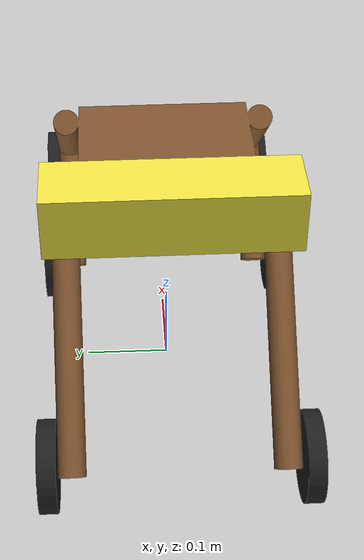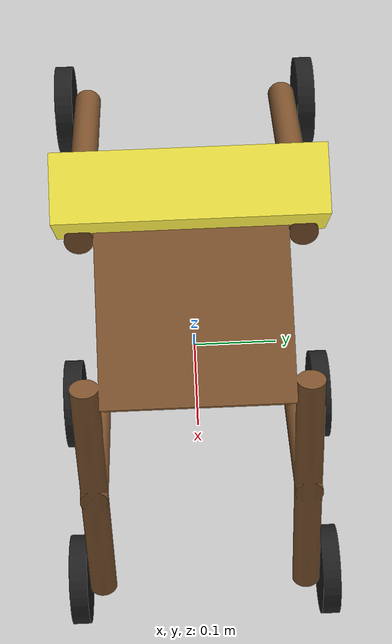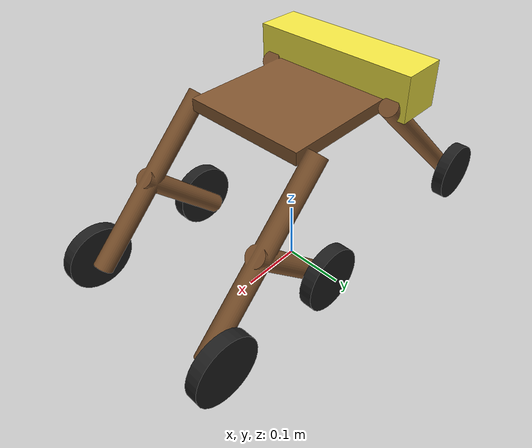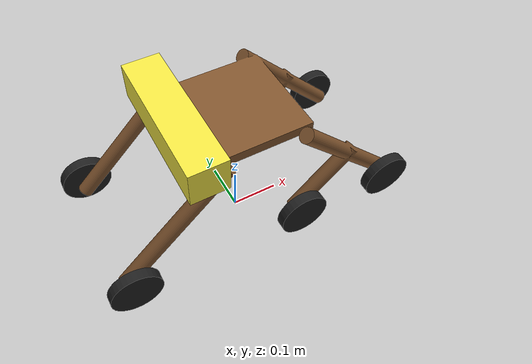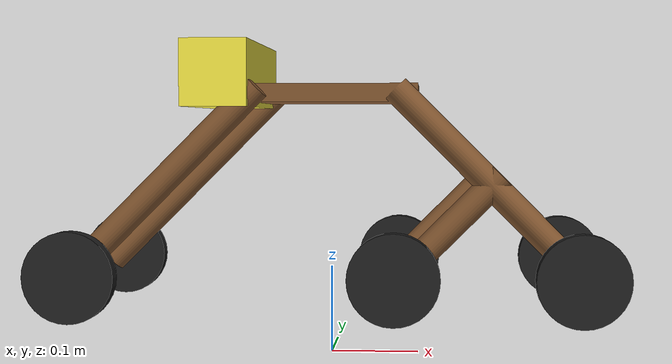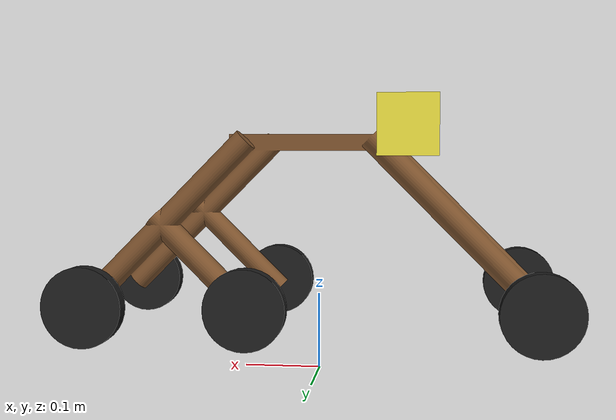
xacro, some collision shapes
<?xml version="1.0"?>
<robot name="drobo" xmlns:xacro="http://ros.org/wiki/xacro">

<xacro:include filename="$(find drobo_description)/urdf/materials.xacro" />
<xacro:include filename="$(find drobo_description)/urdf/drobo_library.urdf.xacro" />
<xacro:include filename="$(find drobo_description)/urdf/drobo_base_gazebo.urdf.xacro" />
<xacro:include filename="$(find drobo_description)/urdf/drobo_gazebo.urdf.xacro" />

    <xacro:property name="width" value="1" />
    <xacro:property name="height" value="0.2" />
    <xacro:property name="depth" value="1" />

<xacro:property name="pipe_length1" value="0.65"/>
<xacro:property name="pipe_length" value="0.5"/>
<xacro:property name="pipe_radius" value="0.05"/>
<xacro:property name="back_pipe_length" value="0.95"/>

<xacro:property name="wheel_length1" value="0.1"/>
<xacro:property name="wheel_radius1" value="0.25"/>
<xacro:property name="wheel_length" value="0.050"/>
<xacro:property name="wheel_radius" value="0.05"/>

<xacro:property name="M_PI" value="3.1415926535897931" />

  <xacro:macro name="cylinder_inertia" params="m r h">
            <mass value="${m}" />
            <origin  xyz="0 0 0" rpy="0 1.57 1.57" />
            <inertia  ixx="${m*(3*r*r+h*h)/12}" ixy = "0" ixz = "0"
                      iyy="${m*(3*r*r+h*h)/12}" iyz = "0"
                      izz="${m*r*r/2}" />
  </xacro:macro>

<xacro:macro name="box_inertia" params="m w h d">
          <mass value="${m}" />
          <inertia
            ixx="${m / 12.0 * (d*d + h*h)}" ixy="0.0" ixz="0.0"
            iyy="${m / 12.0 * (w*w + h*h)}" iyz="0.0"
            izz="${m / 12.0 * (w*w + d*d)}"/>
  </xacro:macro>

//base link-----------------------------------------------
    <link name="base_footprint">
            <visual>
                <geometry>
                   <box size="0.001 0.001 0.001"/>
                </geometry>
                 <origin  xyz="0 0 0" rpy="0 0 0" />
            </visual>
        </link>

    <joint name="base_joint" type="fixed">
      <origin xyz="0 0 ${wheel_radius}" rpy="0 0 0" />
      <parent link="base_footprint"/>
      <child link="base_link" />
    </joint>

<link name="base_link">
          <origin xyz="0 0 0" rpy="0 0 0" />
            <visual>
                <geometry>
                   <mesh filename="package://drobo_description/meshes/body.dae"/>
                </geometry>
                 <origin  xyz="0 0 0" rpy="0 0 0" />
                 <material name="brown"/>
            </visual>
           <collision>
               <geometry>
                  <mesh filename="package://drobo_description/meshes/body.dae"/>>
               </geometry>
                <origin  xyz="0 0 0" rpy="0 0 0" />
           </collision>
<inertial>
           <xacro:box_inertia m="5" w="${width}" h="${height}" d="${depth}" />
</inertial>
       </link>

  <link name="front_left_wheel1">
            <visual>
                <geometry>
                   <mesh filename="package://drobo_description/meshes/wheel.dae"/>
                </geometry>
                 <origin  xyz="0 0 0" rpy="0 0 0" />
                <material name="black"/>
            </visual>
           <collision>
               <geometry>
                  <mesh filename="package://drobo_description/meshes/wheel.dae"/>>
               </geometry>
                <origin  xyz="0 0 0" rpy="0 0 0" />
           </collision>
<inertial>
           <xacro:cylinder_inertia m="0.5" r="${wheel_radius}" h="${wheel_length}"/>
</inertial>
       </link>

       <joint name="base_to_front_left_wheel1" type="continuous">
           <parent link="base_link"/>
           <child link="front_left_wheel1"/>
           <limit effort="100" velocity="100"/>
           <joint_properties damping="0.0" friction="0.0"/>
           <dynamics damping="50" friction="1"/>
           <axis xyz="0 1 0"/>
           <origin rpy="0 0 0" xyz="0.275 -0.14 ${wheel_radius}"/>
       </joint>

<transmission name="front_left_tran1">
    <type>transmission_interface/SimpleTransmission</type>
    <joint name="base_to_front_left_wheel1">
        <hardwareInterface>hardware_interface/EffortJointInterface</hardwareInterface>
    </joint>
    <actuator name="front_left_motor1">
        <hardwareInterface>hardware_interface/EffortJointInterface</hardwareInterface>
        <mechanicalReduction>1</mechanicalReduction>
        <motorTorqueConstant>1</motorTorqueConstant>
    </actuator>
</transmission>

<link name="front_left_wheel2">
            <visual>
                <geometry>
                   <mesh filename="package://drobo_description/meshes/wheel.dae"/>
                </geometry>
                 <origin  xyz="0 0 0" rpy="0 0 0" />
                 <material name="black"/>
            </visual>
           <collision>
               <geometry>
                  <mesh filename="package://drobo_description/meshes/wheel.dae"/>>
               </geometry>
                <origin  xyz="0 0 0" rpy="0 0 0" />
           </collision>
<inertial>
           <xacro:cylinder_inertia m="0.5" r="${wheel_radius}" h="${wheel_length}"/>
</inertial>
       </link>

       <joint name="base_to_front_left_wheel2" type="continuous">
           <parent link="base_link"/>
           <child link="front_left_wheel2"/>
           <limit effort="100" velocity="100"/>
           <joint_properties damping="0.0" friction="0.0"/>
           <dynamics damping="50" friction="1"/>
           <axis xyz="0 1 0"/>
           <origin rpy="0 0 0" xyz="0.075 -0.14 ${wheel_radius}"/>
       </joint>

<transmission name="front_left_tran2">
    <type>transmission_interface/SimpleTransmission</type>
    <joint name="base_to_front_left_wheel2">
        <hardwareInterface>hardware_interface/EffortJointInterface</hardwareInterface>
    </joint>
    <actuator name="front_left_motor2">
        <hardwareInterface>hardware_interface/EffortJointInterface</hardwareInterface>
        <mechanicalReduction>1</mechanicalReduction>
        <motorTorqueConstant>1</motorTorqueConstant>
    </actuator>
</transmission>

<link name="front_right_wheel1">
            <visual>
                <geometry>
                   <mesh filename="package://drobo_description/meshes/wheel.dae"/>
                </geometry>
                 <origin  xyz="0 0 0" rpy="0 0 0" />
                 <material name="black"/>
            </visual>
           <collision>
               <geometry>
                  <mesh filename="package://drobo_description/meshes/wheel.dae"/>>
               </geometry>
                <origin  xyz="0 0 0" rpy="0 0 0" />
           </collision>
<inertial>
           <xacro:cylinder_inertia m="0.5" r="${wheel_radius}" h="${wheel_length}"/>
</inertial>
       </link>

       <joint name="base_to_front_right_wheel1" type="continuous">
           <parent link="base_link"/>
           <child link="front_right_wheel1"/>
           <limit effort="100" velocity="100"/>
           <joint_properties damping="0.0" friction="0.0"/>
           <dynamics damping="50" friction="1"/>
           <axis xyz="0 1 0"/>
           <origin rpy="0 0 0" xyz="0.275 0.14 ${wheel_radius}"/>
       </joint>

<transmission name="front_right_tran1">
    <type>transmission_interface/SimpleTransmission</type>
    <joint name="base_to_front_right_wheel1">
        <hardwareInterface>hardware_interface/EffortJointInterface</hardwareInterface>
    </joint>
    <actuator name="front_right_motor1">
        <hardwareInterface>hardware_interface/EffortJointInterface</hardwareInterface>
        <mechanicalReduction>1</mechanicalReduction>
        <motorTorqueConstant>1</motorTorqueConstant>
    </actuator>
</transmission>

<link name="front_right_wheel2">
            <visual>
                <geometry>
                   <mesh filename="package://drobo_description/meshes/wheel.dae"/>
                </geometry>
                 <origin  xyz="0 0 0" rpy="0 0 0" />
                 <material name="black"/>
            </visual>
           <collision>
               <geometry>
                  <mesh filename="package://drobo_description/meshes/wheel.dae"/>>
               </geometry>
                <origin  xyz="0 0 0" rpy="0 0 0" />
           </collision>
<inertial>
           <xacro:cylinder_inertia m="0.5" r="${wheel_radius}" h="${wheel_length}"/>
</inertial>
       </link>

       <joint name="base_to_front_right_wheel2" type="continuous">
           <parent link="base_link"/>
           <child link="front_right_wheel2"/>
           <limit effort="100" velocity="100"/>
           <joint_properties damping="0.0" friction="0.0"/>
           <dynamics damping="50" friction="1"/>
           <axis xyz="0 1 0"/>
           <origin rpy="0 0 0" xyz="0.075 0.14 ${wheel_radius}"/>
       </joint>

<transmission name="front_right_tran2">
    <type>transmission_interface/SimpleTransmission</type>
    <joint name="base_to_front_right_wheel2">
        <hardwareInterface>hardware_interface/EffortJointInterface</hardwareInterface>
    </joint>
    <actuator name="front_right_motor2">
        <hardwareInterface>hardware_interface/EffortJointInterface</hardwareInterface>
        <mechanicalReduction>1</mechanicalReduction>
        <motorTorqueConstant>1</motorTorqueConstant>
    </actuator>
</transmission>

<link name="back_left_wheel">
          <origin xyz="0 0 0" rpy="0 0 0" />
            <visual>
                <geometry>
                   <mesh filename="package://drobo_description/meshes/wheel.dae"/>
                </geometry>
                 <origin  xyz="0 0 0" rpy="0 0 0" />
                 <material name="black"/>
            </visual>
           <collision>
               <geometry>
                  <mesh filename="package://drobo_description/meshes/wheel.dae"/>>
               </geometry>
                <origin  xyz="0 0 0" rpy="0 0 0" />
           </collision>
<inertial>
           <xacro:cylinder_inertia m="0.5" r="${wheel_radius}" h="${wheel_length}"/>
</inertial>
       </link>

       <joint name="base_to_back_left_wheel" type="continuous">
           <parent link="base_link"/>
           <child link="back_left_wheel"/>
           <limit effort="100" velocity="100"/>
           <joint_properties damping="0.0" friction="0.0"/>
           <dynamics damping="50" friction="1"/>
           <axis xyz="0 1 0"/>
           <origin rpy="0 0 0" xyz="-0.275 -0.14 ${wheel_radius}"/>
       </joint>

<transmission name="back_left_tran">
    <type>transmission_interface/SimpleTransmission</type>
    <joint name="base_to_back_left_wheel">
        <hardwareInterface>hardware_interface/EffortJointInterface</hardwareInterface>
    </joint>
    <actuator name="back_left_motor">
        <hardwareInterface>hardware_interface/EffortJointInterface</hardwareInterface>
        <mechanicalReduction>1</mechanicalReduction>
        <motorTorqueConstant>1</motorTorqueConstant>
    </actuator>
</transmission>

<link name="back_right_wheel">
            <visual>
                <geometry>
                   <mesh filename="package://drobo_description/meshes/wheel.dae"/>
                </geometry>
                 <origin  xyz="0 0 0" rpy="0 0 0" />
                 <material name="black"/>
            </visual>
           <collision>
               <geometry>
                  <mesh filename="package://drobo_description/meshes/wheel.dae"/>>
               </geometry>
                <origin  xyz="0 0 0" rpy="0 0 0" />
           </collision>
<inertial>
           <xacro:cylinder_inertia m="0.5" r="${wheel_radius}" h="${wheel_length}"/>
</inertial>
       </link>

       <joint name="base_to_back_right_wheel" type="continuous">
           <parent link="base_link"/>
           <child link="back_right_wheel"/>
           <limit effort="100" velocity="100"/>
           <joint_properties damping="0.0" friction="0.0"/>
           <dynamics damping="50" friction="1"/>
           <axis xyz="0 1 0"/>
           <origin rpy="0 0 0" xyz="-0.275 0.14 ${wheel_radius}"/>
       </joint>

<transmission name="back_right_tran">
    <type>transmission_interface/SimpleTransmission</type>
    <joint name="base_to_back_right_wheel">
        <hardwareInterface>hardware_interface/EffortJointInterface</hardwareInterface>
    </joint>
    <actuator name="back_right_motor">
        <hardwareInterface>hardware_interface/EffortJointInterface</hardwareInterface>
        <mechanicalReduction>1</mechanicalReduction>
        <motorTorqueConstant>1</motorTorqueConstant>
    </actuator>
</transmission>

<joint name="gyro_joint" type="fixed">
      <axis xyz="0 1 0"/>
      <origin xyz="0.056 0.062 0.0202" rpy="0 0 0"/>
      <parent link="base_link"/>
      <child link="gyro_link"/>
    </joint>
    <link name="gyro_link">
      <inertial>
        <mass value="0.001"/>
        <origin xyz="0 0 0" rpy="0 0 0"/>
        <inertia ixx="0.0001" ixy="0" ixz="0"
                 iyy="0.000001" iyz="0"
                 izz="0.0001"/>
      </inertial>
    </link>

 <!-- drobo Gazebo simulation details -->
  <drobo_sim/>
  <drobo_sim_3dsensor/>
  <sensor_kinect  parent="base_link"/>

 </robot>

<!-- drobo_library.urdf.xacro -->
<robot name="drobo" xmlns:xacro="http://ros.org/wiki/xacro">

<!--
  The complete drobo library of xacros for easy reference
 -->
  <!-- General -->
  <xacro:include filename="$(find drobo_description)/urdf/drobo_properties.urdf.xacro"/>

  <!-- 3D Sensors -->

  <xacro:include filename="$(find drobo_description)/urdf/kinect.urdf.xacro"/>

</robot>

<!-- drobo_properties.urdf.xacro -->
<robot>
	<property name="cam_px" value="-0.087" />
	<property name="cam_py" value="-0.0125" />
	<property name="cam_pz" value="0.2870" />
	<property name="cam_or" value="0" />
	<property name="cam_op" value="0" />
	<property name="cam_oy" value="0" />
</robot>

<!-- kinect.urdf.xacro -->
<robot name="sensor_kinect" xmlns:xacro="http://ros.org/wiki/xacro">
  <xacro:include filename="$(find drobo_description)/urdf/drobo_gazebo.urdf.xacro"/>
  <xacro:include filename="$(find drobo_description)/urdf/drobo_properties.urdf.xacro"/>

  <!-- Parameterised in part by the values in turtlebot_properties.urdf.xacro -->
  <xacro:macro name="sensor_kinect" params="parent">
    <joint name="camera_rgb_joint" type="fixed">
      <origin xyz="${cam_px} ${cam_py} ${cam_pz}" rpy="${cam_or} ${cam_op} ${cam_oy}"/>
      <parent link="${parent}"/>
      <child link="camera_rgb_frame" />
    </joint>
    <link name="camera_rgb_frame">
      <inertial>
        <mass value="0.001" />
        <origin xyz="0 0 0" />
        <inertia ixx="0.0001" ixy="0.0" ixz="0.0"
                 iyy="0.0001" iyz="0.0"
                 izz="0.0001" />
      </inertial>
    </link>
    <joint name="camera_rgb_optical_joint" type="fixed">
      <origin xyz="0 0 0" rpy="${-M_PI/2} 0 ${-M_PI/2}" />
      <parent link="camera_rgb_frame" />
      <child link="camera_rgb_optical_frame" />
    </joint>
    <link name="camera_rgb_optical_frame">
      <inertial>
        <mass value="0.001" />
        <origin xyz="0 0 0" />
        <inertia ixx="0.0001" ixy="0.0" ixz="0.0"
                 iyy="0.0001" iyz="0.0"
                 izz="0.0001" />
      </inertial>
    </link>

  <joint name="camera_joint" type="fixed">
    <origin xyz="-0.031 ${-cam_py} -0.016" rpy="0 0 0"/>
    <parent link="camera_rgb_frame"/>
    <child link="camera_link"/>
  </joint>
    <link name="camera_link">
    <visual>
     <origin xyz="0 0 0" rpy="0 0 ${M_PI/2}"/>
      <geometry>
       <mesh filename="package://drobo_description/meshes/kinect.dae"/>
      </geometry>
    </visual>
	  <collision>
      <origin xyz="0.0 0.0 0.0" rpy="0 0 0"/>
	    <geometry>
	      <box size="0.07271 0.27794 0.073"/>
	    </geometry>
	  </collision>
    <inertial>
      <mass value="0.001" />
      <origin xyz="0 0 0" />
      <inertia ixx="0.0001" ixy="0.0" ixz="0.0"
               iyy="0.0001" iyz="0.0"
               izz="0.0001" />
    </inertial>
  </link>

	<joint name="camera_depth_joint" type="fixed">
	  <origin xyz="0 ${2 * -cam_py} 0" rpy="0 0 0" />
	  <parent link="camera_rgb_frame" />
	  <child link="camera_depth_frame" />
	</joint>
	<link name="camera_depth_frame">
    <inertial>
      <mass value="0.001" />
      <origin xyz="0 0 0" />
      <inertia ixx="0.0001" ixy="0.0" ixz="0.0"
               iyy="0.0001" iyz="0.0"
               izz="0.0001" />
    </inertial>
	</link>
	<joint name="camera_depth_optical_joint" type="fixed">
	  <origin xyz="0 0 0" rpy="${-M_PI/2} 0 ${-M_PI/2}" />
	  <parent link="camera_depth_frame" />
	  <child link="camera_depth_optical_frame" />
	</joint>
	<link name="camera_depth_optical_frame">
    <inertial>
      <mass value="0.001" />
      <origin xyz="0 0 0" />
      <inertia ixx="0.0001" ixy="0.0" ixz="0.0"
               iyy="0.0001" iyz="0.0"
               izz="0.0001" />
    </inertial>
	</link>

	<!-- Kinect sensor for simulation -->
	<drobo_sim_3dsensor/>
  </xacro:macro>
</robot>
